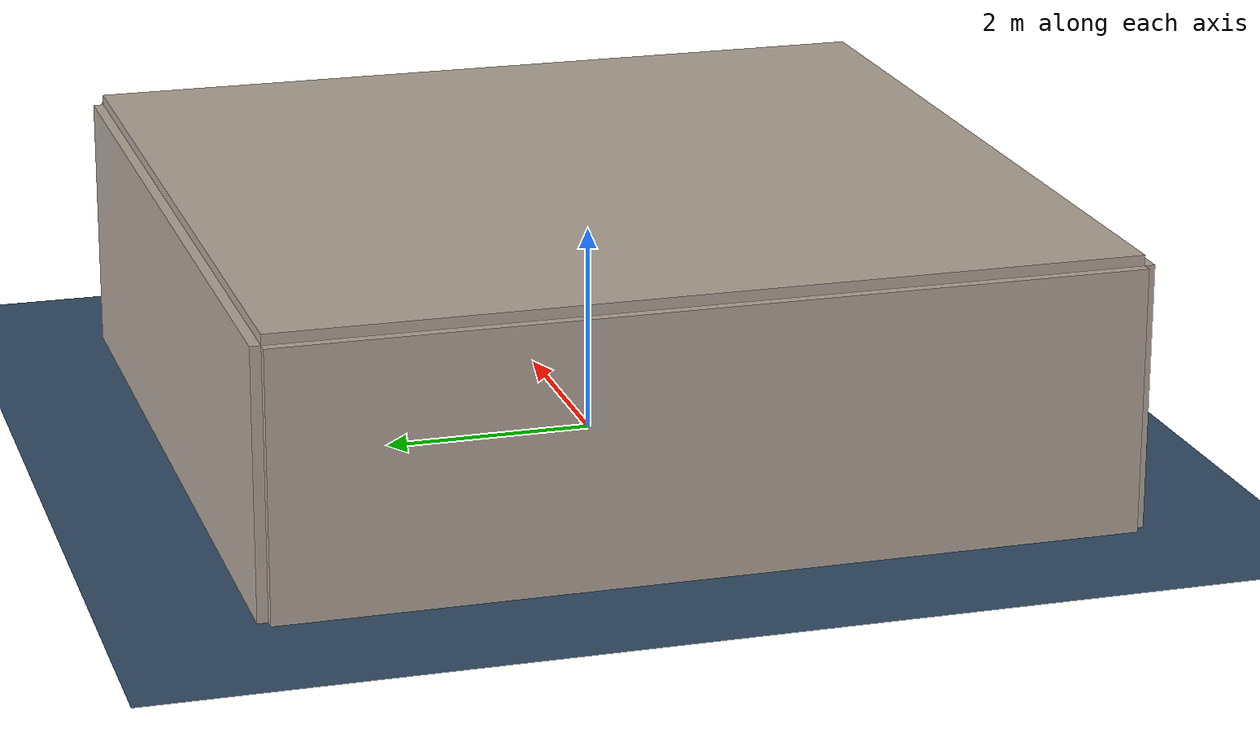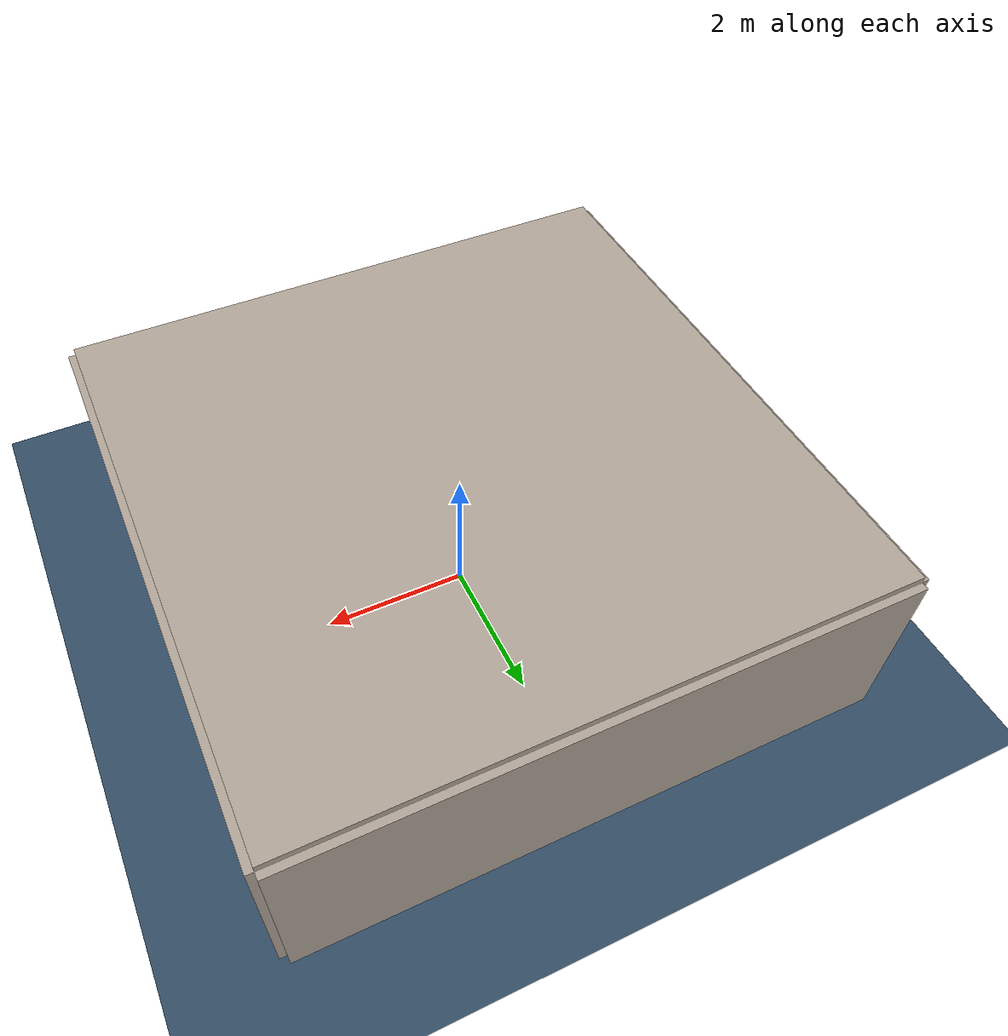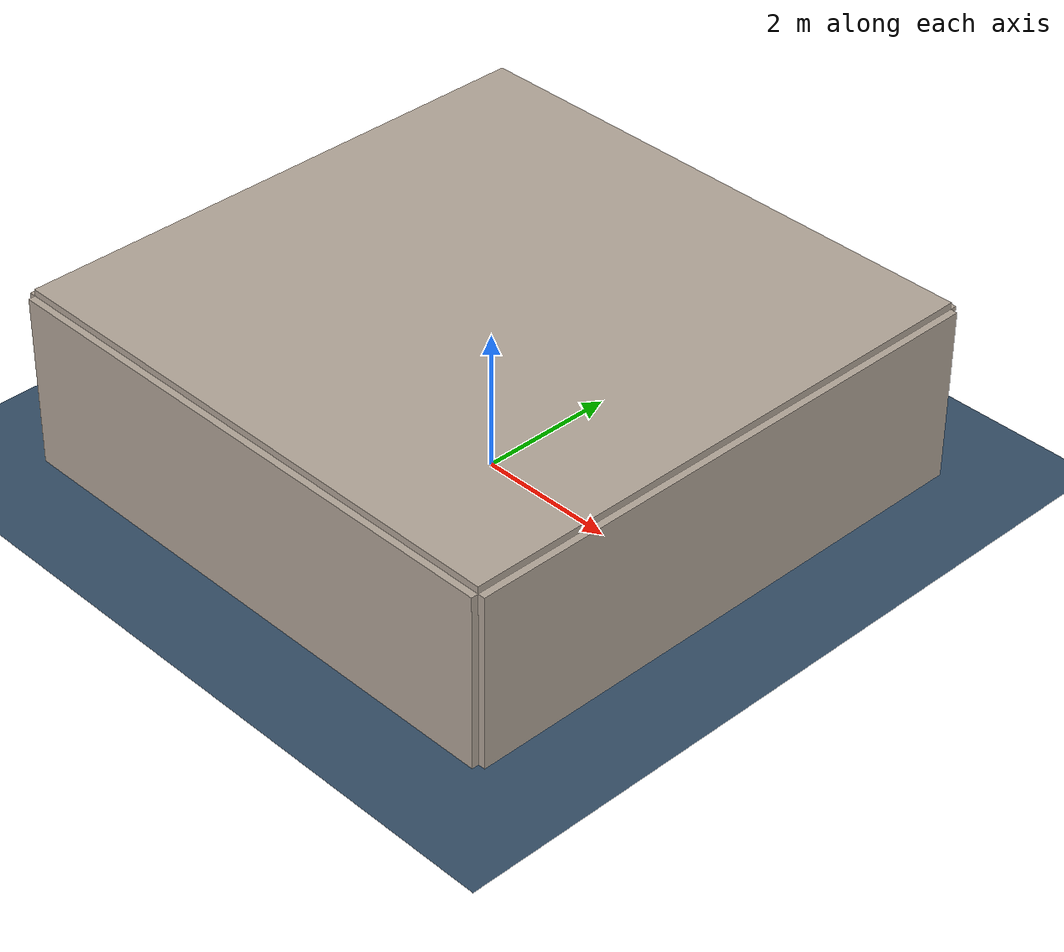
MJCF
<mujoco model="nav_room">
  <statistic center="0 0 0.8" extent="6"/>

  <visual>
    <headlight diffuse="0.6 0.6 0.6" ambient="0.3 0.3 0.3" specular="0 0 0"/>
    <rgba haze="0.15 0.25 0.35 1"/>
    <global azimuth="150" elevation="-20"/>
  </visual>

  <asset>
    <texture name="skybox" type="skybox" builtin="gradient" rgb1="0.2 0.3 0.4" rgb2="0 0 0" width="800" height="800"/>
    <texture type="2d" name="groundplane" builtin="checker" mark="edge"
             rgb1="0.25 0.35 0.45" rgb2="0.15 0.25 0.35" markrgb="0.8 0.8 0.8"
             width="512" height="512"/>
    <texture type="2d" name="wall_tex" builtin="flat" rgb1="0.7 0.65 0.6" width="64" height="64"/>
    <material name="groundplane" texture="groundplane" texuniform="true" texrepeat="4 4" reflectance="0.1"/>
    <material name="wall" texture="wall_tex" reflectance="0.05"/>
  </asset>

  <worldbody>
    <light pos="0 0 6" dir="0 0 -1" directional="true" diffuse="0.8 0.8 0.8"/>
    <light pos="3 3 4"  dir="-1 -1 -1" diffuse="0.4 0.4 0.4"/>

    <!-- 地面 -->
    <geom name="floor" type="plane" size="10 10 0.1"
          material="groundplane" conaffinity="7" condim="3" friction="1"/>

    <!-- ===== 房间外墙 (8m x 8m, 高2.5m) ===== -->
    <!-- 南墙 (x = -4) -->
    <geom name="wall_south" type="box" size="0.1 4 1.25"
          pos="-4 0 1.25" material="wall" conaffinity="7"/>
    <!-- 北墙 (x = +4) -->
    <geom name="wall_north" type="box" size="0.1 4 1.25"
          pos="4 0 1.25" material="wall" conaffinity="7"/>
    <!-- 西墙 (y = -4) -->
    <geom name="wall_west" type="box" size="4 0.1 1.25"
          pos="0 -4 1.25" material="wall" conaffinity="7"/>
    <!-- 东墙 (y = +4) -->
    <geom name="wall_east" type="box" size="4 0.1 1.25"
          pos="0 4 1.25" material="wall" conaffinity="7"/>

    <!-- ===== 内部障碍物（模拟走廊/隔断） ===== -->
    <!-- 中间隔墙（留缺口构成走廊） -->
    <geom name="inner_wall1" type="box" size="0.1 1.5 1.0"
          pos="0 -2.5 1.0" material="wall" conaffinity="7"/>
    <geom name="inner_wall2" type="box" size="0.1 1.5 1.0"
          pos="0 2.5 1.0" material="wall" conaffinity="7"/>

    <!-- 柱子 -->
    <geom name="pillar1" type="cylinder" size="0.15 1.25"
          pos="2 2 1.25" material="wall" conaffinity="7"/>
    <geom name="pillar2" type="cylinder" size="0.15 1.25"
          pos="2 -2 1.25" material="wall" conaffinity="7"/>
    <geom name="pillar3" type="cylinder" size="0.15 1.25"
          pos="-2 2 1.25" material="wall" conaffinity="7"/>
    <geom name="pillar4" type="cylinder" size="0.15 1.25"
          pos="-2 -2 1.25" material="wall" conaffinity="7"/>

    <!-- 天花板 (Z=2.5m，为 LiDAR 提供 Z 轴约束) -->
    <geom name="ceiling" type="box" size="4 4 0.05"
          pos="0 0 2.55" material="wall" conaffinity="0"/>

    <!-- 箱子障碍物 -->
    <geom name="box1" type="box" size="0.3 0.3 0.4"
          pos="1 0 0.4" material="wall" conaffinity="7"/>
    <geom name="box2" type="box" size="0.2 0.4 0.3"
          pos="-1 1.5 0.3" material="wall" conaffinity="7"/>
  </worldbody>
</mujoco>
